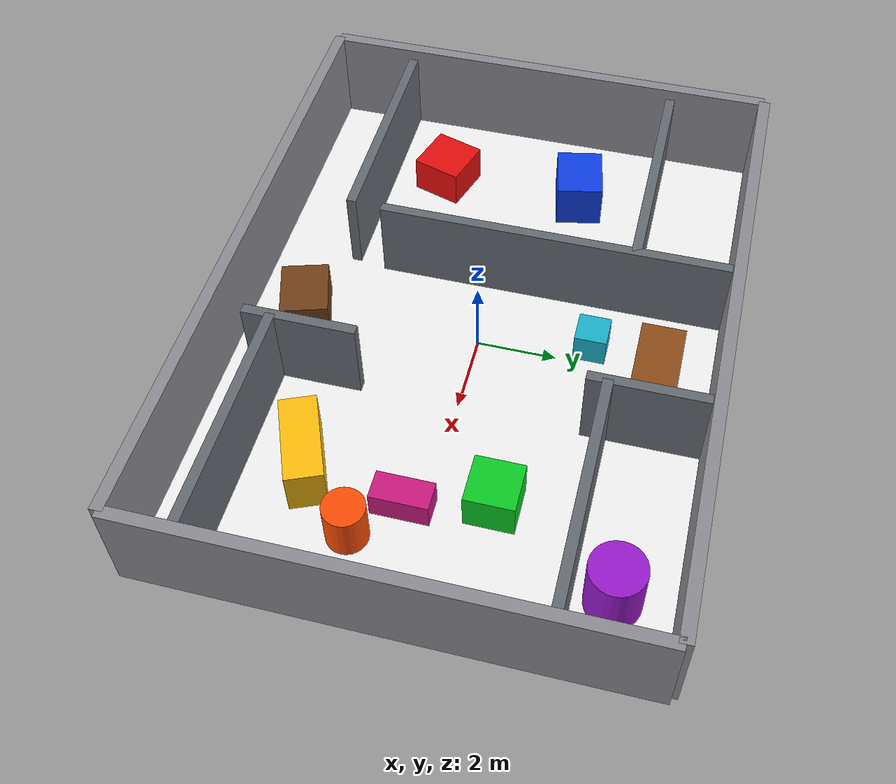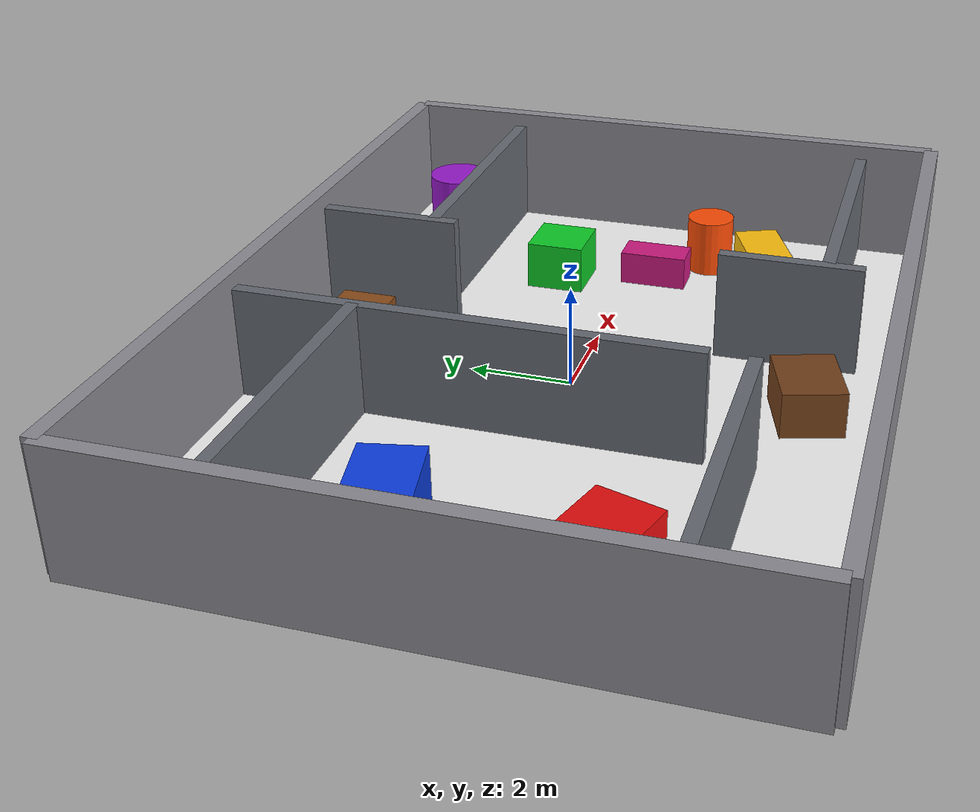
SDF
<sdf version="1.6">
 <world name="bot2_complex_room">
  <plugin filename="gz-sim-physics-system" name="gz::sim::systems::Physics"/>
  <plugin filename="gz-sim-user-commands-system" name="gz::sim::systems::UserCommands"/>
  <plugin filename="gz-sim-scene-broadcaster-system" name="gz::sim::systems::SceneBroadcaster"/>
  <plugin filename="gz-sim-sensors-system" name="gz::sim::systems::Sensors">
   <render_engine>ogre2</render_engine>
  </plugin>
  <plugin filename="gz-sim-imu-system" name="gz::sim::systems::Imu"/>
  <physics name="default_physics" type="ode">
   <max_step_size>0.001</max_step_size>
   <real_time_factor>1</real_time_factor>
   <real_time_update_rate>1000</real_time_update_rate>
  </physics>
  <light name="sun" type="directional">
   <pose>0 0 10 0 0 0</pose>
   <diffuse>0.9 0.9 0.9 1</diffuse>
   <specular>0.2 0.2 0.2 1</specular>
   <direction>-0.3 0.2 -1</direction>
  </light>
  <light name="room_light_1" type="point">
   <pose>-4 3 3 0 0 0</pose>
   <diffuse>1 1 1 1</diffuse>
   <specular>0.4 0.4 0.4 1</specular>
   <attenuation>
    <range>12</range>
    <constant>0.5</constant>
    <linear>0.01</linear>
    <quadratic>0.001</quadratic>
   </attenuation>
  </light>
  <light name="room_light_2" type="point">
   <pose>4 -3 3 0 0 0</pose>
   <diffuse>1 1 1 1</diffuse>
   <specular>0.4 0.4 0.4 1</specular>
   <attenuation>
    <range>12</range>
    <constant>0.5</constant>
    <linear>0.01</linear>
    <quadratic>0.001</quadratic>
   </attenuation>
  </light>
  <model name="white_floor">
   <static>true</static>
   <pose>0 0 -0.05 0 0 0</pose>
   <link name="floor">
    <collision name="collision"><geometry><box><size>16 12 0.1</size></box></geometry></collision>
    <visual name="visual">
     <geometry><box><size>16 12 0.1</size></box></geometry>
     <material>
      <ambient>0.95 0.95 0.95 1</ambient>
      <diffuse>0.95 0.95 0.95 1</diffuse>
      <specular>0.3 0.3 0.3 1</specular>
     </material>
    </visual>
   </link>
  </model>
  <model name="outer_north">
   <static>true</static>
   <pose>0 6 1.25 0 0 0</pose>
   <link name="wall">
    <collision name="collision"><geometry><box><size>16 0.3 2.5</size></box></geometry></collision>
    <visual name="visual">
     <geometry><box><size>16 0.3 2.5</size></box></geometry>
     <material><ambient>0.55 0.55 0.58 1</ambient><diffuse>0.55 0.55 0.58 1</diffuse></material>
    </visual>
   </link>
  </model>
  <model name="outer_south">
   <static>true</static>
   <pose>0 -6 1.25 0 0 0</pose>
   <link name="wall">
    <collision name="collision"><geometry><box><size>16 0.3 2.5</size></box></geometry></collision>
    <visual name="visual">
     <geometry><box><size>16 0.3 2.5</size></box></geometry>
     <material><ambient>0.55 0.55 0.58 1</ambient><diffuse>0.55 0.55 0.58 1</diffuse></material>
    </visual>
   </link>
  </model>
  <model name="outer_west">
   <static>true</static>
   <pose>-8 0 1.25 0 0 0</pose>
   <link name="wall">
    <collision name="collision"><geometry><box><size>0.3 12 2.5</size></box></geometry></collision>
    <visual name="visual">
     <geometry><box><size>0.3 12 2.5</size></box></geometry>
     <material><ambient>0.55 0.55 0.58 1</ambient><diffuse>0.55 0.55 0.58 1</diffuse></material>
    </visual>
   </link>
  </model>
  <model name="outer_east">
   <static>true</static>
   <pose>8 0 1.25 0 0 0</pose>
   <link name="wall">
    <collision name="collision"><geometry><box><size>0.3 12 2.5</size></box></geometry></collision>
    <visual name="visual">
     <geometry><box><size>0.3 12 2.5</size></box></geometry>
     <material><ambient>0.55 0.55 0.58 1</ambient><diffuse>0.55 0.55 0.58 1</diffuse></material>
    </visual>
   </link>
  </model>
  <model name="corridor_wall_left">
   <static>true</static>
   <pose>-2 1.5 1.1 0 0 0</pose>
   <link name="wall">
    <collision name="collision"><geometry><box><size>0.25 9 2.2</size></box></geometry></collision>
    <visual name="visual">
     <geometry><box><size>0.25 9 2.2</size></box></geometry>
     <material><ambient>0.4 0.42 0.45 1</ambient><diffuse>0.4 0.42 0.45 1</diffuse></material>
    </visual>
   </link>
  </model>
  <model name="corridor_wall_right_1">
   <static>true</static>
   <pose>2 4.5 1.1 0 0 0</pose>
   <link name="wall">
    <collision name="collision"><geometry><box><size>0.25 3 2.2</size></box></geometry></collision>
    <visual name="visual">
     <geometry><box><size>0.25 3 2.2</size></box></geometry>
     <material><ambient>0.4 0.42 0.45 1</ambient><diffuse>0.4 0.42 0.45 1</diffuse></material>
    </visual>
   </link>
  </model>
  <model name="corridor_wall_right_2">
   <static>true</static>
   <pose>2 -3.8 1.1 0 0 0</pose>
   <link name="wall">
    <collision name="collision"><geometry><box><size>0.25 2.8 2.2</size></box></geometry></collision>
    <visual name="visual">
     <geometry><box><size>0.25 2.8 2.2</size></box></geometry>
     <material><ambient>0.4 0.42 0.45 1</ambient><diffuse>0.4 0.42 0.45 1</diffuse></material>
    </visual>
   </link>
  </model>
  <model name="left_room_wall_top">
   <static>true</static>
   <pose>-5 3.5 1.1 0 0 0</pose>
   <link name="wall">
    <collision name="collision"><geometry><box><size>6 0.25 2.2</size></box></geometry></collision>
    <visual name="visual">
     <geometry><box><size>6 0.25 2.2</size></box></geometry>
     <material><ambient>0.4 0.42 0.45 1</ambient><diffuse>0.4 0.42 0.45 1</diffuse></material>
    </visual>
   </link>
  </model>
  <model name="left_room_wall_bottom">
   <static>true</static>
   <pose>-5 -3.8 1.1 0 0 0</pose>
   <link name="wall">
    <collision name="collision"><geometry><box><size>6 0.25 2.2</size></box></geometry></collision>
    <visual name="visual">
     <geometry><box><size>6 0.25 2.2</size></box></geometry>
     <material><ambient>0.4 0.42 0.45 1</ambient><diffuse>0.4 0.42 0.45 1</diffuse></material>
    </visual>
   </link>
  </model>
  <model name="upper_room_wall">
   <static>true</static>
   <pose>5 3.5 1.1 0 0 0</pose>
   <link name="wall">
    <collision name="collision"><geometry><box><size>6 0.25 2.2</size></box></geometry></collision>
    <visual name="visual">
     <geometry><box><size>6 0.25 2.2</size></box></geometry>
     <material><ambient>0.4 0.42 0.45 1</ambient><diffuse>0.4 0.42 0.45 1</diffuse></material>
    </visual>
   </link>
  </model>
  <model name="lower_room_wall">
   <static>true</static>
   <pose>5 -4.5 1.1 0 0 0</pose>
   <link name="wall">
    <collision name="collision"><geometry><box><size>6 0.25 2.2</size></box></geometry></collision>
    <visual name="visual">
     <geometry><box><size>6 0.25 2.2</size></box></geometry>
     <material><ambient>0.4 0.42 0.45 1</ambient><diffuse>0.4 0.42 0.45 1</diffuse></material>
    </visual>
   </link>
  </model>
  <model name="blue_obstacle">
   <static>true</static>
   <pose>-5.5 1.5 0.6 0 0 0.2</pose>
   <link name="link">
    <collision name="collision"><geometry><box><size>1.5 1.2 1.2</size></box></geometry></collision>
    <visual name="visual">
     <geometry><box><size>1.5 1.2 1.2</size></box></geometry>
     <material><ambient>0.05 0.25 0.9 1</ambient><diffuse>0.05 0.25 0.9 1</diffuse></material>
    </visual>
   </link>
  </model>
  <model name="red_obstacle">
   <static>true</static>
   <pose>-5.5 -2.2 0.5 0 0 -0.3</pose>
   <link name="link">
    <collision name="collision"><geometry><box><size>1.3 1.3 1</size></box></geometry></collision>
    <visual name="visual">
     <geometry><box><size>1.3 1.3 1</size></box></geometry>
     <material><ambient>0.9 0.05 0.05 1</ambient><diffuse>0.9 0.05 0.05 1</diffuse></material>
    </visual>
   </link>
  </model>
  <model name="green_obstacle">
   <static>true</static>
   <pose>4.5 1.5 0.5 0 0 0</pose>
   <link name="link">
    <collision name="collision"><geometry><box><size>1.2 1.2 1</size></box></geometry></collision>
    <visual name="visual">
     <geometry><box><size>1.2 1.2 1</size></box></geometry>
     <material><ambient>0.05 0.8 0.15 1</ambient><diffuse>0.05 0.8 0.15 1</diffuse></material>
    </visual>
   </link>
  </model>
  <model name="yellow_obstacle">
   <static>true</static>
   <pose>4.5 -3 0.6 0 0 0.4</pose>
   <link name="link">
    <collision name="collision"><geometry><box><size>2.2 0.9 1.2</size></box></geometry></collision>
    <visual name="visual">
     <geometry><box><size>2.2 0.9 1.2</size></box></geometry>
     <material><ambient>1 0.75 0.05 1</ambient><diffuse>1 0.75 0.05 1</diffuse></material>
    </visual>
   </link>
  </model>
  <model name="purple_cylinder">
   <static>true</static>
   <pose>6.2 4.5 0.75 0 0 0</pose>
   <link name="link">
    <collision name="collision">
     <geometry><cylinder><radius>0.65</radius><length>1.5</length></cylinder></geometry>
    </collision>
    <visual name="visual">
     <geometry><cylinder><radius>0.65</radius><length>1.5</length></cylinder></geometry>
     <material><ambient>0.6 0.1 0.8 1</ambient><diffuse>0.6 0.1 0.8 1</diffuse></material>
    </visual>
   </link>
  </model>
  <model name="orange_cylinder">
   <static>true</static>
   <pose>6 -1.5 0.6 0 0 0</pose>
   <link name="link">
    <collision name="collision">
     <geometry><cylinder><radius>0.5</radius><length>1.2</length></cylinder></geometry>
    </collision>
    <visual name="visual">
     <geometry><cylinder><radius>0.5</radius><length>1.2</length></cylinder></geometry>
     <material><ambient>1 0.3 0.02 1</ambient><diffuse>1 0.3 0.02 1</diffuse></material>
    </visual>
   </link>
  </model>
  <model name="table_1">
   <static>true</static>
   <pose>0 4.5 0.45 0 0 0</pose>
   <link name="link">
    <collision name="collision"><geometry><box><size>1.8 1.1 0.9</size></box></geometry></collision>
    <visual name="visual">
     <geometry><box><size>1.8 1.1 0.9</size></box></geometry>
     <material><ambient>0.55 0.3 0.1 1</ambient><diffuse>0.55 0.3 0.1 1</diffuse></material>
    </visual>
   </link>
  </model>
  <model name="table_2">
   <static>true</static>
   <pose>0 -4.5 0.45 0 0 0.3</pose>
   <link name="link">
    <collision name="collision"><geometry><box><size>1.5 1.2 0.9</size></box></geometry></collision>
    <visual name="visual">
     <geometry><box><size>1.5 1.2 0.9</size></box></geometry>
     <material><ambient>0.45 0.25 0.1 1</ambient><diffuse>0.45 0.25 0.1 1</diffuse></material>
    </visual>
   </link>
  </model>
  <model name="small_block_1">
   <static>true</static>
   <pose>-0.5 2.8 0.4 0 0 0</pose>
   <link name="link">
    <collision name="collision"><geometry><box><size>0.8 0.8 0.8</size></box></geometry></collision>
    <visual name="visual">
     <geometry><box><size>0.8 0.8 0.8</size></box></geometry>
     <material><ambient>0.1 0.7 0.8 1</ambient><diffuse>0.1 0.7 0.8 1</diffuse></material>
    </visual>
   </link>
  </model>
  <model name="small_block_2">
   <static>true</static>
   <pose>5 -0.5 0.35 0 0 0</pose>
   <link name="link">
    <collision name="collision"><geometry><box><size>0.7 1.4 0.7</size></box></geometry></collision>
    <visual name="visual">
     <geometry><box><size>0.7 1.4 0.7</size></box></geometry>
     <material><ambient>0.8 0.1 0.5 1</ambient><diffuse>0.8 0.1 0.5 1</diffuse></material>
    </visual>
   </link>
  </model>
 </world>
</sdf>
